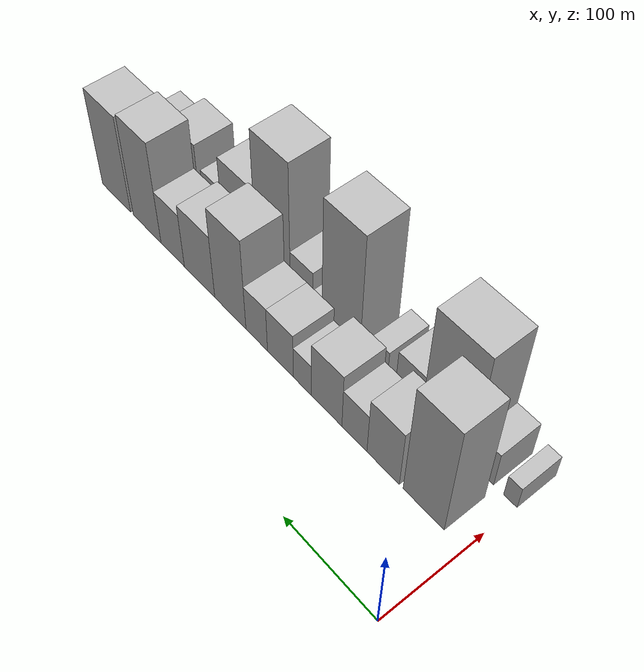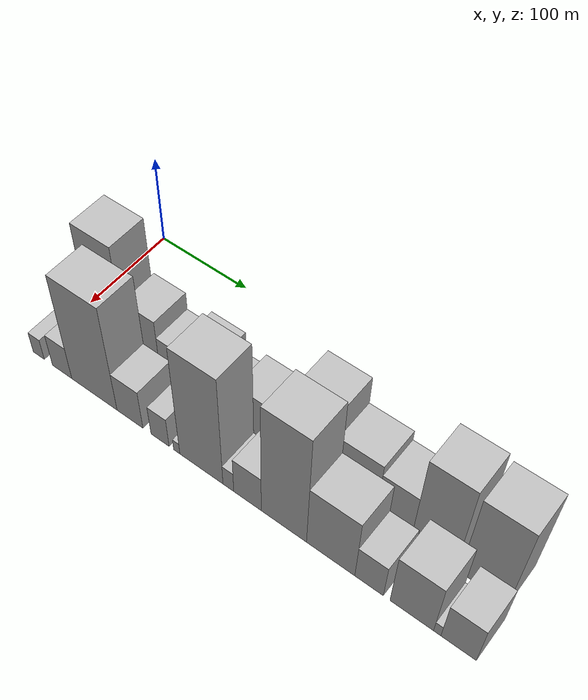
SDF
<sdf version="1.6">
 <world name="default">
  <model name="building_15">
   <static>1</static>
   <pose>100.0000 41.0591 0 0.000000 0.000000 0.000000</pose>
   <link name="link">
    <pose>0 0 66.00 0 0 0</pose>
    <collision name="collision"><geometry><box><size>40.0000 42.6827 132.0000</size></box></geometry></collision>
    <visual name="visual">
     <cast_shadows>0</cast_shadows>
     <geometry><box><size>40.0000 42.6827 132.0000</size></box></geometry>
     <material>
      <script>
       <uri>model://HANNAS_wall/materials/scripts</uri>
       <uri>model://HANNAS_wall/materials/textures</uri>
       <name>vrc/HANNAS_wall</name>
      </script>
     </material>
    </visual>
   </link>
  </model>
  <model name="building_16">
   <static>1</static>
   <pose>100.0000 84.0272 0 0.000000 0.000000 0.000000</pose>
   <link name="link">
    <pose>0 0 34.50 0 0 0</pose>
    <collision name="collision"><geometry><box><size>40.0000 35.2536 69.0000</size></box></geometry></collision>
    <visual name="visual">
     <cast_shadows>0</cast_shadows>
     <geometry><box><size>40.0000 35.2536 69.0000</size></box></geometry>
     <material>
      <script>
       <uri>model://HANNAS_wall/materials/scripts</uri>
       <uri>model://HANNAS_wall/materials/textures</uri>
       <name>vrc/HANNAS_wall</name>
      </script>
     </material>
    </visual>
   </link>
  </model>
  <model name="building_17">
   <static>1</static>
   <pose>100.0000 115.7076 0 0.000000 0.000000 0.000000</pose>
   <link name="link">
    <pose>0 0 24.00 0 0 0</pose>
    <collision name="collision"><geometry><box><size>40.0000 28.1073 48.0000</size></box></geometry></collision>
    <visual name="visual">
     <cast_shadows>0</cast_shadows>
     <geometry><box><size>40.0000 28.1073 48.0000</size></box></geometry>
     <material>
      <script>
       <uri>model://HANNAS_wall/materials/scripts</uri>
       <uri>model://HANNAS_wall/materials/textures</uri>
       <name>vrc/HANNAS_wall</name>
      </script>
     </material>
    </visual>
   </link>
  </model>
  <model name="building_18">
   <static>1</static>
   <pose>100.0000 147.5798 0 0.000000 0.000000 0.000000</pose>
   <link name="link">
    <pose>0 0 33.00 0 0 0</pose>
    <collision name="collision"><geometry><box><size>40.0000 35.6371 66.0000</size></box></geometry></collision>
    <visual name="visual">
     <cast_shadows>0</cast_shadows>
     <geometry><box><size>40.0000 35.6371 66.0000</size></box></geometry>
     <material>
      <script>
       <uri>model://HANNAS_wall/materials/scripts</uri>
       <uri>model://HANNAS_wall/materials/textures</uri>
       <name>vrc/HANNAS_wall</name>
      </script>
     </material>
    </visual>
   </link>
  </model>
  <model name="building_19">
   <static>1</static>
   <pose>100.0000 176.0471 0 0.000000 0.000000 0.000000</pose>
   <link name="link">
    <pose>0 0 19.50 0 0 0</pose>
    <collision name="collision"><geometry><box><size>40.0000 21.2976 39.0000</size></box></geometry></collision>
    <visual name="visual">
     <cast_shadows>0</cast_shadows>
     <geometry><box><size>40.0000 21.2976 39.0000</size></box></geometry>
     <material>
      <script>
       <uri>model://HANNAS_wall/materials/scripts</uri>
       <uri>model://HANNAS_wall/materials/textures</uri>
       <name>vrc/HANNAS_wall</name>
      </script>
     </material>
    </visual>
   </link>
  </model>
  <model name="building_20">
   <static>1</static>
   <pose>100.0000 202.6414 0 0.000000 0.000000 0.000000</pose>
   <link name="link">
    <pose>0 0 27.00 0 0 0</pose>
    <collision name="collision"><geometry><box><size>40.0000 31.8909 54.0000</size></box></geometry></collision>
    <visual name="visual">
     <cast_shadows>0</cast_shadows>
     <geometry><box><size>40.0000 31.8909 54.0000</size></box></geometry>
     <material>
      <script>
       <uri>model://HANNAS_wall/materials/scripts</uri>
       <uri>model://HANNAS_wall/materials/textures</uri>
       <name>vrc/HANNAS_wall</name>
      </script>
     </material>
    </visual>
   </link>
  </model>
  <model name="building_21">
   <static>1</static>
   <pose>100.0000 232.2344 0 0.000000 0.000000 0.000000</pose>
   <link name="link">
    <pose>0 0 27.00 0 0 0</pose>
    <collision name="collision"><geometry><box><size>40.0000 27.2950 54.0000</size></box></geometry></collision>
    <visual name="visual">
     <cast_shadows>0</cast_shadows>
     <geometry><box><size>40.0000 27.2950 54.0000</size></box></geometry>
     <material>
      <script>
       <uri>model://HANNAS_wall/materials/scripts</uri>
       <uri>model://HANNAS_wall/materials/textures</uri>
       <name>vrc/HANNAS_wall</name>
      </script>
     </material>
    </visual>
   </link>
  </model>
  <model name="building_22">
   <static>1</static>
   <pose>100.0000 266.3312 0 0.000000 0.000000 0.000000</pose>
   <link name="link">
    <pose>0 0 54.00 0 0 0</pose>
    <collision name="collision"><geometry><box><size>40.0000 40.8987 108.0000</size></box></geometry></collision>
    <visual name="visual">
     <cast_shadows>0</cast_shadows>
     <geometry><box><size>40.0000 40.8987 108.0000</size></box></geometry>
     <material>
      <script>
       <uri>model://HANNAS_wall/materials/scripts</uri>
       <uri>model://HANNAS_wall/materials/textures</uri>
       <name>vrc/HANNAS_wall</name>
      </script>
     </material>
    </visual>
   </link>
  </model>
  <model name="building_23">
   <static>1</static>
   <pose>100.0000 307.5057 0 0.000000 0.000000 0.000000</pose>
   <link name="link">
    <pose>0 0 37.50 0 0 0</pose>
    <collision name="collision"><geometry><box><size>40.0000 41.4503 75.0000</size></box></geometry></collision>
    <visual name="visual">
     <cast_shadows>0</cast_shadows>
     <geometry><box><size>40.0000 41.4503 75.0000</size></box></geometry>
     <material>
      <script>
       <uri>model://HANNAS_wall/materials/scripts</uri>
       <uri>model://HANNAS_wall/materials/textures</uri>
       <name>vrc/HANNAS_wall</name>
      </script>
     </material>
    </visual>
   </link>
  </model>
  <model name="building_24">
   <static>1</static>
   <pose>100.0000 344.7179 0 0.000000 0.000000 0.000000</pose>
   <link name="link">
    <pose>0 0 31.50 0 0 0</pose>
    <collision name="collision"><geometry><box><size>40.0000 32.9742 63.0000</size></box></geometry></collision>
    <visual name="visual">
     <cast_shadows>0</cast_shadows>
     <geometry><box><size>40.0000 32.9742 63.0000</size></box></geometry>
     <material>
      <script>
       <uri>model://HANNAS_wall/materials/scripts</uri>
       <uri>model://HANNAS_wall/materials/textures</uri>
       <name>vrc/HANNAS_wall</name>
      </script>
     </material>
    </visual>
   </link>
  </model>
  <model name="building_25">
   <static>1</static>
   <pose>100.0000 381.5132 0 0.000000 0.000000 0.000000</pose>
   <link name="link">
    <pose>0 0 58.50 0 0 0</pose>
    <collision name="collision"><geometry><box><size>40.0000 40.6165 117.0000</size></box></geometry></collision>
    <visual name="visual">
     <cast_shadows>0</cast_shadows>
     <geometry><box><size>40.0000 40.6165 117.0000</size></box></geometry>
     <material>
      <script>
       <uri>model://HANNAS_wall/materials/scripts</uri>
       <uri>model://HANNAS_wall/materials/textures</uri>
       <name>vrc/HANNAS_wall</name>
      </script>
     </material>
    </visual>
   </link>
  </model>
  <model name="building_26">
   <static>1</static>
   <pose>100.0000 427.1948 0 0.000000 0.000000 0.000000</pose>
   <link name="link">
    <pose>0 0 55.50 0 0 0</pose>
    <collision name="collision"><geometry><box><size>40.0000 42.7465 111.0000</size></box></geometry></collision>
    <visual name="visual">
     <cast_shadows>0</cast_shadows>
     <geometry><box><size>40.0000 42.7465 111.0000</size></box></geometry>
     <material>
      <script>
       <uri>model://HANNAS_wall/materials/scripts</uri>
       <uri>model://HANNAS_wall/materials/textures</uri>
       <name>vrc/HANNAS_wall</name>
      </script>
     </material>
    </visual>
   </link>
  </model>
  <model name="building_37">
   <static>1</static>
   <pose>152.0000 5.9502 0 0.000000 0.000000 0.000000</pose>
   <link name="link">
    <pose>0 0 13.50 0 0 0</pose>
    <collision name="collision"><geometry><box><size>40.0000 13.4901 27.0000</size></box></geometry></collision>
    <visual name="visual">
     <cast_shadows>0</cast_shadows>
     <geometry><box><size>40.0000 13.4901 27.0000</size></box></geometry>
     <material>
      <script>
       <uri>model://HANNAS_wall/materials/scripts</uri>
       <uri>model://HANNAS_wall/materials/textures</uri>
       <name>vrc/HANNAS_wall</name>
      </script>
     </material>
    </visual>
   </link>
  </model>
  <model name="building_38">
   <static>1</static>
   <pose>152.0000 34.3432 0 0.000000 0.000000 0.000000</pose>
   <link name="link">
    <pose>0 0 21.00 0 0 0</pose>
    <collision name="collision"><geometry><box><size>40.0000 23.2959 42.0000</size></box></geometry></collision>
    <visual name="visual">
     <cast_shadows>0</cast_shadows>
     <geometry><box><size>40.0000 23.2959 42.0000</size></box></geometry>
     <material>
      <script>
       <uri>model://HANNAS_wall/materials/scripts</uri>
       <uri>model://HANNAS_wall/materials/textures</uri>
       <name>vrc/HANNAS_wall</name>
      </script>
     </material>
    </visual>
   </link>
  </model>
  <model name="building_39">
   <static>1</static>
   <pose>152.0000 72.4950 0 0.000000 0.000000 0.000000</pose>
   <link name="link">
    <pose>0 0 67.50 0 0 0</pose>
    <collision name="collision"><geometry><box><size>40.0000 53.0077 135.0000</size></box></geometry></collision>
    <visual name="visual">
     <cast_shadows>0</cast_shadows>
     <geometry><box><size>40.0000 53.0077 135.0000</size></box></geometry>
     <material>
      <script>
       <uri>model://HANNAS_wall/materials/scripts</uri>
       <uri>model://HANNAS_wall/materials/textures</uri>
       <name>vrc/HANNAS_wall</name>
      </script>
     </material>
    </visual>
   </link>
  </model>
  <model name="building_40">
   <static>1</static>
   <pose>152.0000 113.6224 0 0.000000 0.000000 0.000000</pose>
   <link name="link">
    <pose>0 0 25.50 0 0 0</pose>
    <collision name="collision"><geometry><box><size>40.0000 29.2471 51.0000</size></box></geometry></collision>
    <visual name="visual">
     <cast_shadows>0</cast_shadows>
     <geometry><box><size>40.0000 29.2471 51.0000</size></box></geometry>
     <material>
      <script>
       <uri>model://HANNAS_wall/materials/scripts</uri>
       <uri>model://HANNAS_wall/materials/textures</uri>
       <name>vrc/HANNAS_wall</name>
      </script>
     </material>
    </visual>
   </link>
  </model>
  <model name="building_41">
   <static>1</static>
   <pose>152.0000 147.2096 0 0.000000 0.000000 0.000000</pose>
   <link name="link">
    <pose>0 0 19.50 0 0 0</pose>
    <collision name="collision"><geometry><box><size>40.0000 19.9275 39.0000</size></box></geometry></collision>
    <visual name="visual">
     <cast_shadows>0</cast_shadows>
     <geometry><box><size>40.0000 19.9275 39.0000</size></box></geometry>
     <material>
      <script>
       <uri>model://HANNAS_wall/materials/scripts</uri>
       <uri>model://HANNAS_wall/materials/textures</uri>
       <name>vrc/HANNAS_wall</name>
      </script>
     </material>
    </visual>
   </link>
  </model>
  <model name="building_42">
   <static>1</static>
   <pose>152.0000 165.5259 0 0.000000 0.000000 0.000000</pose>
   <link name="link">
    <pose>0 0 7.50 0 0 0</pose>
    <collision name="collision"><geometry><box><size>40.0000 6.7051 15.0000</size></box></geometry></collision>
    <visual name="visual">
     <cast_shadows>0</cast_shadows>
     <geometry><box><size>40.0000 6.7051 15.0000</size></box></geometry>
     <material>
      <script>
       <uri>model://HANNAS_wall/materials/scripts</uri>
       <uri>model://HANNAS_wall/materials/textures</uri>
       <name>vrc/HANNAS_wall</name>
      </script>
     </material>
    </visual>
   </link>
  </model>
  <model name="building_43">
   <static>1</static>
   <pose>152.0000 191.7799 0 0.000000 0.000000 0.000000</pose>
   <link name="link">
    <pose>0 0 72.00 0 0 0</pose>
    <collision name="collision"><geometry><box><size>40.0000 45.8029 144.0000</size></box></geometry></collision>
    <visual name="visual">
     <cast_shadows>0</cast_shadows>
     <geometry><box><size>40.0000 45.8029 144.0000</size></box></geometry>
     <material>
      <script>
       <uri>model://HANNAS_wall/materials/scripts</uri>
       <uri>model://HANNAS_wall/materials/textures</uri>
       <name>vrc/HANNAS_wall</name>
      </script>
     </material>
    </visual>
   </link>
  </model>
  <model name="building_44">
   <static>1</static>
   <pose>152.0000 220.2586 0 0.000000 0.000000 0.000000</pose>
   <link name="link">
    <pose>0 0 13.50 0 0 0</pose>
    <collision name="collision"><geometry><box><size>40.0000 11.1543 27.0000</size></box></geometry></collision>
    <visual name="visual">
     <cast_shadows>0</cast_shadows>
     <geometry><box><size>40.0000 11.1543 27.0000</size></box></geometry>
     <material>
      <script>
       <uri>model://HANNAS_wall/materials/scripts</uri>
       <uri>model://HANNAS_wall/materials/textures</uri>
       <name>vrc/HANNAS_wall</name>
      </script>
     </material>
    </visual>
   </link>
  </model>
  <model name="building_45">
   <static>1</static>
   <pose>152.0000 239.8834 0 0.000000 0.000000 0.000000</pose>
   <link name="link">
    <pose>0 0 24.00 0 0 0</pose>
    <collision name="collision"><geometry><box><size>40.0000 28.0953 48.0000</size></box></geometry></collision>
    <visual name="visual">
     <cast_shadows>0</cast_shadows>
     <geometry><box><size>40.0000 28.0953 48.0000</size></box></geometry>
     <material>
      <script>
       <uri>model://HANNAS_wall/materials/scripts</uri>
       <uri>model://HANNAS_wall/materials/textures</uri>
       <name>vrc/HANNAS_wall</name>
      </script>
     </material>
    </visual>
   </link>
  </model>
  <model name="building_46">
   <static>1</static>
   <pose>152.0000 276.3162 0 0.000000 0.000000 0.000000</pose>
   <link name="link">
    <pose>0 0 73.50 0 0 0</pose>
    <collision name="collision"><geometry><box><size>40.0000 44.7704 147.0000</size></box></geometry></collision>
    <visual name="visual">
     <cast_shadows>0</cast_shadows>
     <geometry><box><size>40.0000 44.7704 147.0000</size></box></geometry>
     <material>
      <script>
       <uri>model://HANNAS_wall/materials/scripts</uri>
       <uri>model://HANNAS_wall/materials/textures</uri>
       <name>vrc/HANNAS_wall</name>
      </script>
     </material>
    </visual>
   </link>
  </model>
  <model name="building_47">
   <static>1</static>
   <pose>152.0000 321.6887 0 0.000000 0.000000 0.000000</pose>
   <link name="link">
    <pose>0 0 40.50 0 0 0</pose>
    <collision name="collision"><geometry><box><size>40.0000 45.9746 81.0000</size></box></geometry></collision>
    <visual name="visual">
     <cast_shadows>0</cast_shadows>
     <geometry><box><size>40.0000 45.9746 81.0000</size></box></geometry>
     <material>
      <script>
       <uri>model://HANNAS_wall/materials/scripts</uri>
       <uri>model://HANNAS_wall/materials/textures</uri>
       <name>vrc/HANNAS_wall</name>
      </script>
     </material>
    </visual>
   </link>
  </model>
  <model name="building_48">
   <static>1</static>
   <pose>152.0000 357.8351 0 0.000000 0.000000 0.000000</pose>
   <link name="link">
    <pose>0 0 22.50 0 0 0</pose>
    <collision name="collision"><geometry><box><size>40.0000 26.3183 45.0000</size></box></geometry></collision>
    <visual name="visual">
     <cast_shadows>0</cast_shadows>
     <geometry><box><size>40.0000 26.3183 45.0000</size></box></geometry>
     <material>
      <script>
       <uri>model://HANNAS_wall/materials/scripts</uri>
       <uri>model://HANNAS_wall/materials/textures</uri>
       <name>vrc/HANNAS_wall</name>
      </script>
     </material>
    </visual>
   </link>
  </model>
  <model name="building_49">
   <static>1</static>
   <pose>152.0000 396.4027 0 0.000000 0.000000 0.000000</pose>
   <link name="link">
    <pose>0 0 34.50 0 0 0</pose>
    <collision name="collision"><geometry><box><size>40.0000 38.8168 69.0000</size></box></geometry></collision>
    <visual name="visual">
     <cast_shadows>0</cast_shadows>
     <geometry><box><size>40.0000 38.8168 69.0000</size></box></geometry>
     <material>
      <script>
       <uri>model://HANNAS_wall/materials/scripts</uri>
       <uri>model://HANNAS_wall/materials/textures</uri>
       <name>vrc/HANNAS_wall</name>
      </script>
     </material>
    </visual>
   </link>
  </model>
  <model name="building_50">
   <static>1</static>
   <pose>152.0000 419.0177 0 0.000000 0.000000 0.000000</pose>
   <link name="link">
    <pose>0 0 7.50 0 0 0</pose>
    <collision name="collision"><geometry><box><size>40.0000 6.4132 15.0000</size></box></geometry></collision>
    <visual name="visual">
     <cast_shadows>0</cast_shadows>
     <geometry><box><size>40.0000 6.4132 15.0000</size></box></geometry>
     <material>
      <script>
       <uri>model://HANNAS_wall/materials/scripts</uri>
       <uri>model://HANNAS_wall/materials/textures</uri>
       <name>vrc/HANNAS_wall</name>
      </script>
     </material>
    </visual>
   </link>
  </model>
  <model name="building_51">
   <static>1</static>
   <pose>152.0000 437.4393 0 0.000000 0.000000 0.000000</pose>
   <link name="link">
    <pose>0 0 25.50 0 0 0</pose>
    <collision name="collision"><geometry><box><size>40.0000 30.4299 51.0000</size></box></geometry></collision>
    <visual name="visual">
     <cast_shadows>0</cast_shadows>
     <geometry><box><size>40.0000 30.4299 51.0000</size></box></geometry>
     <material>
      <script>
       <uri>model://HANNAS_wall/materials/scripts</uri>
       <uri>model://HANNAS_wall/materials/textures</uri>
       <name>vrc/HANNAS_wall</name>
      </script>
     </material>
    </visual>
   </link>
  </model>
 </world>
</sdf>
